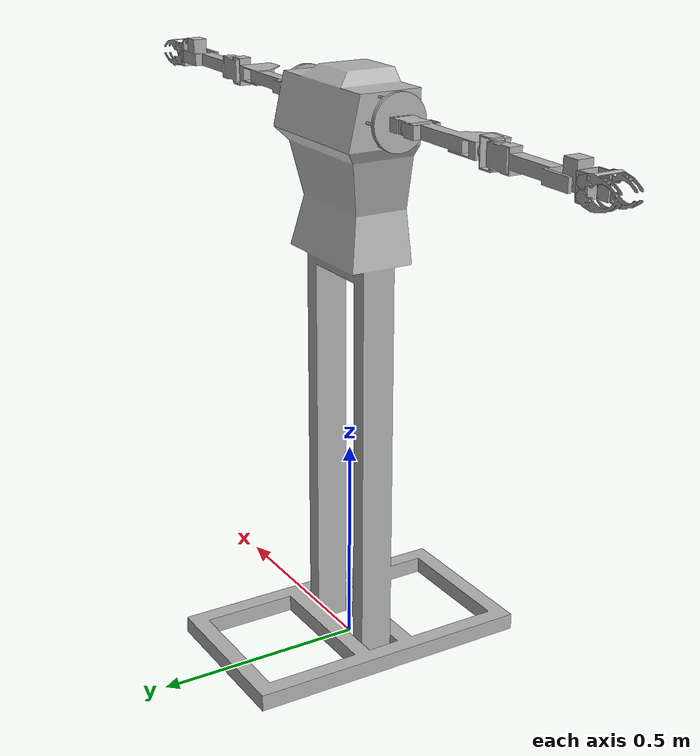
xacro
<?xml version="1.0" ?>
<robot name="Robot_v3" xmlns:xacro="http://www.ros.org/wiki/xacro">

<xacro:include filename="$(find Robot_v3_description)/urdf/materials.xacro" />
<xacro:include filename="$(find Robot_v3_description)/urdf/Robot_v3.trans" />
<xacro:include filename="$(find Robot_v3_description)/urdf/Robot_v3.gazebo" />
<link name="base_link">
  <inertial>
    <origin xyz="-5.454402963127223e-18 0.00017793668988113717 0.8689085940658481" rpy="0 0 0"/>
    <mass value="224.71501051023168"/>
    <inertia ixx="55.047659" iyy="55.39019" izz="4.206946" ixy="0.0" iyz="-0.066429" ixz="-0.0"/>
  </inertial>
  <visual>
    <origin xyz="0 0 0" rpy="0 0 0"/>
    <geometry>
      <mesh filename="package://Robot_v3_description/meshes/base_link.stl" scale="0.001 0.001 0.001"/>
    </geometry>
    <material name="silver"/>
  </visual>
  <collision>
    <origin xyz="0 0 0" rpy="0 0 0"/>
    <geometry>
      <mesh filename="package://Robot_v3_description/meshes/base_link.stl" scale="0.001 0.001 0.001"/>
    </geometry>
  </collision>
</link>

<link name="right_shoulder_1">
  <inertial>
    <origin xyz="0.027330882089484643 -2.42861286636753e-17 2.220446049250313e-16" rpy="0 0 0"/>
    <mass value="1.4666981122291545"/>
    <inertia ixx="0.001578" iyy="0.001727" izz="0.00186" ixy="-0.0" iyz="-0.0" ixz="0.0"/>
  </inertial>
  <visual>
    <origin xyz="-0.1965 0.0015 -1.317" rpy="0 0 0"/>
    <geometry>
      <mesh filename="package://Robot_v3_description/meshes/right_shoulder_1.stl" scale="0.001 0.001 0.001"/>
    </geometry>
    <material name="silver"/>
  </visual>
  <collision>
    <origin xyz="-0.1965 0.0015 -1.317" rpy="0 0 0"/>
    <geometry>
      <mesh filename="package://Robot_v3_description/meshes/right_shoulder_1.stl" scale="0.001 0.001 0.001"/>
    </geometry>
  </collision>
</link>

<link name="right_upper_arm_1">
  <inertial>
    <origin xyz="0.1430705592158693 -0.035260426712845856 2.220446049250313e-16" rpy="0 0 0"/>
    <mass value="1.9288762922196283"/>
    <inertia ixx="0.001022" iyy="0.008968" izz="0.009575" ixy="0.001101" iyz="-0.0" ixz="0.0"/>
  </inertial>
  <visual>
    <origin xyz="-0.2645 -0.0255 -1.317" rpy="0 0 0"/>
    <geometry>
      <mesh filename="package://Robot_v3_description/meshes/right_upper_arm_1.stl" scale="0.001 0.001 0.001"/>
    </geometry>
    <material name="silver"/>
  </visual>
  <collision>
    <origin xyz="-0.2645 -0.0255 -1.317" rpy="0 0 0"/>
    <geometry>
      <mesh filename="package://Robot_v3_description/meshes/right_upper_arm_1.stl" scale="0.001 0.001 0.001"/>
    </geometry>
  </collision>
</link>

<link name="right_elbow_1">
  <inertial>
    <origin xyz="0.017967251502734316 9.072039994229009e-14 1.3322676295501878e-15" rpy="0 0 0"/>
    <mass value="0.14390404221962602"/>
    <inertia ixx="0.000104" iyy="0.000129" izz="4.5e-05" ixy="0.0" iyz="0.0" ixz="-0.0"/>
  </inertial>
  <visual>
    <origin xyz="-0.4995 0.0015 -1.317" rpy="0 0 0"/>
    <geometry>
      <mesh filename="package://Robot_v3_description/meshes/right_elbow_1.stl" scale="0.001 0.001 0.001"/>
    </geometry>
    <material name="silver"/>
  </visual>
  <collision>
    <origin xyz="-0.4995 0.0015 -1.317" rpy="0 0 0"/>
    <geometry>
      <mesh filename="package://Robot_v3_description/meshes/right_elbow_1.stl" scale="0.001 0.001 0.001"/>
    </geometry>
  </collision>
</link>

<link name="right_forearm_1">
  <inertial>
    <origin xyz="0.09444754727005034 -9.540979117872439e-18 -0.027499999999999192" rpy="0 0 0"/>
    <mass value="2.028991579777898"/>
    <inertia ixx="0.000674" iyy="0.011803" izz="0.011894" ixy="-0.0" iyz="-0.0" ixz="0.0"/>
  </inertial>
  <visual>
    <origin xyz="-0.5385 0.0015 -1.3445" rpy="0 0 0"/>
    <geometry>
      <mesh filename="package://Robot_v3_description/meshes/right_forearm_1.stl" scale="0.001 0.001 0.001"/>
    </geometry>
    <material name="silver"/>
  </visual>
  <collision>
    <origin xyz="-0.5385 0.0015 -1.3445" rpy="0 0 0"/>
    <geometry>
      <mesh filename="package://Robot_v3_description/meshes/right_forearm_1.stl" scale="0.001 0.001 0.001"/>
    </geometry>
  </collision>
</link>

<link name="right_wrist_1">
  <inertial>
    <origin xyz="0.00022630011372237746 0.021500000000005515 0.014473720665366008" rpy="0 0 0"/>
    <mass value="0.7029015023306757"/>
    <inertia ixx="0.00029" iyy="0.000304" izz="0.000174" ixy="-0.0" iyz="0.0" ixz="2e-06"/>
  </inertial>
  <visual>
    <origin xyz="-0.7785 0.023 -1.317" rpy="0 0 0"/>
    <geometry>
      <mesh filename="package://Robot_v3_description/meshes/right_wrist_1.stl" scale="0.001 0.001 0.001"/>
    </geometry>
    <material name="silver"/>
  </visual>
  <collision>
    <origin xyz="-0.7785 0.023 -1.317" rpy="0 0 0"/>
    <geometry>
      <mesh filename="package://Robot_v3_description/meshes/right_wrist_1.stl" scale="0.001 0.001 0.001"/>
    </geometry>
  </collision>
</link>

<link name="right_hand_1">
  <inertial>
    <origin xyz="0.015812535108692627 4.2400544880694113e-14 4.440892098500626e-16" rpy="0 0 0"/>
    <mass value="0.18246095209761248"/>
    <inertia ixx="0.000135" iyy="7e-05" izz="0.000108" ixy="0.0" iyz="0.0" ixz="0.0"/>
  </inertial>
  <visual>
    <origin xyz="-0.8015 0.0015 -1.317" rpy="0 0 0"/>
    <geometry>
      <mesh filename="package://Robot_v3_description/meshes/right_hand_1.stl" scale="0.001 0.001 0.001"/>
    </geometry>
    <material name="silver"/>
  </visual>
  <collision>
    <origin xyz="-0.8015 0.0015 -1.317" rpy="0 0 0"/>
    <geometry>
      <mesh filename="package://Robot_v3_description/meshes/right_hand_1.stl" scale="0.001 0.001 0.001"/>
    </geometry>
  </collision>
</link>

<link name="right_clamp_1">
  <inertial>
    <origin xyz="0.029699086444145095 -0.02624490134481386 0.006164242188830604" rpy="0 0 0"/>
    <mass value="0.0832628699699654"/>
    <inertia ixx="6.4e-05" iyy="6.6e-05" izz="0.000119" ixy="3e-06" iyz="1e-06" ixz="-5e-06"/>
  </inertial>
  <visual>
    <origin xyz="-0.8265 -0.026 -1.331" rpy="0 0 0"/>
    <geometry>
      <mesh filename="package://Robot_v3_description/meshes/right_clamp_1.stl" scale="0.001 0.001 0.001"/>
    </geometry>
    <material name="silver"/>
  </visual>
  <collision>
    <origin xyz="-0.8265 -0.026 -1.331" rpy="0 0 0"/>
    <geometry>
      <mesh filename="package://Robot_v3_description/meshes/right_clamp_1.stl" scale="0.001 0.001 0.001"/>
    </geometry>
  </collision>
</link>

<link name="right_clamp_2_1">
  <inertial>
    <origin xyz="0.029406622089125367 -0.02621524633662658 -0.006310473415974904" rpy="0 0 0"/>
    <mass value="0.081340975399017"/>
    <inertia ixx="6.2e-05" iyy="6.4e-05" izz="0.000116" ixy="3e-06" iyz="-1e-06" ixz="5e-06"/>
  </inertial>
  <visual>
    <origin xyz="-0.8265 -0.026 -1.303" rpy="0 0 0"/>
    <geometry>
      <mesh filename="package://Robot_v3_description/meshes/right_clamp_2_1.stl" scale="0.001 0.001 0.001"/>
    </geometry>
    <material name="silver"/>
  </visual>
  <collision>
    <origin xyz="-0.8265 -0.026 -1.303" rpy="0 0 0"/>
    <geometry>
      <mesh filename="package://Robot_v3_description/meshes/right_clamp_2_1.stl" scale="0.001 0.001 0.001"/>
    </geometry>
  </collision>
</link>

<link name="left_shoulder_1">
  <inertial>
    <origin xyz="-0.027330882089484643 -2.42861286636753e-17 2.220446049250313e-16" rpy="0 0 0"/>
    <mass value="1.4666981122291545"/>
    <inertia ixx="0.001578" iyy="0.001727" izz="0.00186" ixy="0.0" iyz="-0.0" ixz="-0.0"/>
  </inertial>
  <visual>
    <origin xyz="0.1965 0.0015 -1.317" rpy="0 0 0"/>
    <geometry>
      <mesh filename="package://Robot_v3_description/meshes/left_shoulder_1.stl" scale="0.001 0.001 0.001"/>
    </geometry>
    <material name="silver"/>
  </visual>
  <collision>
    <origin xyz="0.1965 0.0015 -1.317" rpy="0 0 0"/>
    <geometry>
      <mesh filename="package://Robot_v3_description/meshes/left_shoulder_1.stl" scale="0.001 0.001 0.001"/>
    </geometry>
  </collision>
</link>

<link name="left_upper_arm_1">
  <inertial>
    <origin xyz="-0.1430705592158693 -0.035260426712845856 4.440892098500626e-16" rpy="0 0 0"/>
    <mass value="1.9288762922196283"/>
    <inertia ixx="0.001022" iyy="0.008968" izz="0.009575" ixy="-0.001101" iyz="0.0" ixz="0.0"/>
  </inertial>
  <visual>
    <origin xyz="0.2645 -0.0255 -1.317" rpy="0 0 0"/>
    <geometry>
      <mesh filename="package://Robot_v3_description/meshes/left_upper_arm_1.stl" scale="0.001 0.001 0.001"/>
    </geometry>
    <material name="silver"/>
  </visual>
  <collision>
    <origin xyz="0.2645 -0.0255 -1.317" rpy="0 0 0"/>
    <geometry>
      <mesh filename="package://Robot_v3_description/meshes/left_upper_arm_1.stl" scale="0.001 0.001 0.001"/>
    </geometry>
  </collision>
</link>

<link name="left_elbow_1">
  <inertial>
    <origin xyz="-0.017967251502734316 9.071888205924861e-14 1.3322676295501878e-15" rpy="0 0 0"/>
    <mass value="0.14390404221962605"/>
    <inertia ixx="0.000104" iyy="0.000129" izz="4.5e-05" ixy="-0.0" iyz="-0.0" ixz="0.0"/>
  </inertial>
  <visual>
    <origin xyz="0.4995 0.0015 -1.317" rpy="0 0 0"/>
    <geometry>
      <mesh filename="package://Robot_v3_description/meshes/left_elbow_1.stl" scale="0.001 0.001 0.001"/>
    </geometry>
    <material name="silver"/>
  </visual>
  <collision>
    <origin xyz="0.4995 0.0015 -1.317" rpy="0 0 0"/>
    <geometry>
      <mesh filename="package://Robot_v3_description/meshes/left_elbow_1.stl" scale="0.001 0.001 0.001"/>
    </geometry>
  </collision>
</link>

<link name="left_forearm_1">
  <inertial>
    <origin xyz="-0.09444754727005022 -1.0842021724855044e-18 -0.027499999999999636" rpy="0 0 0"/>
    <mass value="2.028991579777898"/>
    <inertia ixx="0.000674" iyy="0.011803" izz="0.011894" ixy="0.0" iyz="0.0" ixz="0.0"/>
  </inertial>
  <visual>
    <origin xyz="0.5385 0.0015 -1.3445" rpy="0 0 0"/>
    <geometry>
      <mesh filename="package://Robot_v3_description/meshes/left_forearm_1.stl" scale="0.001 0.001 0.001"/>
    </geometry>
    <material name="silver"/>
  </visual>
  <collision>
    <origin xyz="0.5385 0.0015 -1.3445" rpy="0 0 0"/>
    <geometry>
      <mesh filename="package://Robot_v3_description/meshes/left_forearm_1.stl" scale="0.001 0.001 0.001"/>
    </geometry>
  </collision>
</link>

<link name="left_wrist_1">
  <inertial>
    <origin xyz="-0.00022630011372237746 -0.021499999999994485 0.014473720665366452" rpy="0 0 0"/>
    <mass value="0.7029015023306757"/>
    <inertia ixx="0.00029" iyy="0.000304" izz="0.000174" ixy="0.0" iyz="0.0" ixz="-2e-06"/>
  </inertial>
  <visual>
    <origin xyz="0.7785 -0.02 -1.317" rpy="0 0 0"/>
    <geometry>
      <mesh filename="package://Robot_v3_description/meshes/left_wrist_1.stl" scale="0.001 0.001 0.001"/>
    </geometry>
    <material name="silver"/>
  </visual>
  <collision>
    <origin xyz="0.7785 -0.02 -1.317" rpy="0 0 0"/>
    <geometry>
      <mesh filename="package://Robot_v3_description/meshes/left_wrist_1.stl" scale="0.001 0.001 0.001"/>
    </geometry>
  </collision>
</link>

<link name="left_hand_1">
  <inertial>
    <origin xyz="-0.015812535108692627 4.2394473348528194e-14 4.440892098500626e-16" rpy="0 0 0"/>
    <mass value="0.18246095209761248"/>
    <inertia ixx="0.000135" iyy="7e-05" izz="0.000108" ixy="-0.0" iyz="0.0" ixz="0.0"/>
  </inertial>
  <visual>
    <origin xyz="0.8015 0.0015 -1.317" rpy="0 0 0"/>
    <geometry>
      <mesh filename="package://Robot_v3_description/meshes/left_hand_1.stl" scale="0.001 0.001 0.001"/>
    </geometry>
    <material name="silver"/>
  </visual>
  <collision>
    <origin xyz="0.8015 0.0015 -1.317" rpy="0 0 0"/>
    <geometry>
      <mesh filename="package://Robot_v3_description/meshes/left_hand_1.stl" scale="0.001 0.001 0.001"/>
    </geometry>
  </collision>
</link>

<link name="left_clamp_1">
  <inertial>
    <origin xyz="-0.029699086444145095 0.028755098655186308 0.006164242188830604" rpy="0 0 0"/>
    <mass value="0.0832628699699621"/>
    <inertia ixx="6.4e-05" iyy="6.6e-05" izz="0.000119" ixy="-3e-06" iyz="1e-06" ixz="5e-06"/>
  </inertial>
  <visual>
    <origin xyz="0.8265 0.029 -1.331" rpy="0 0 0"/>
    <geometry>
      <mesh filename="package://Robot_v3_description/meshes/left_clamp_1.stl" scale="0.001 0.001 0.001"/>
    </geometry>
    <material name="silver"/>
  </visual>
  <collision>
    <origin xyz="0.8265 0.029 -1.331" rpy="0 0 0"/>
    <geometry>
      <mesh filename="package://Robot_v3_description/meshes/left_clamp_1.stl" scale="0.001 0.001 0.001"/>
    </geometry>
  </collision>
</link>

<link name="left_clamp_2_1">
  <inertial>
    <origin xyz="-0.029406622089125478 0.02878475366337348 -0.006310473415974904" rpy="0 0 0"/>
    <mass value="0.08134097539901687"/>
    <inertia ixx="6.2e-05" iyy="6.4e-05" izz="0.000116" ixy="-3e-06" iyz="-1e-06" ixz="-5e-06"/>
  </inertial>
  <visual>
    <origin xyz="0.8265 0.029 -1.303" rpy="0 0 0"/>
    <geometry>
      <mesh filename="package://Robot_v3_description/meshes/left_clamp_2_1.stl" scale="0.001 0.001 0.001"/>
    </geometry>
    <material name="silver"/>
  </visual>
  <collision>
    <origin xyz="0.8265 0.029 -1.303" rpy="0 0 0"/>
    <geometry>
      <mesh filename="package://Robot_v3_description/meshes/left_clamp_2_1.stl" scale="0.001 0.001 0.001"/>
    </geometry>
  </collision>
</link>

<joint name="RJ1" type="continuous">
  <origin xyz="0.1965 -0.0015 1.317" rpy="0 0 0"/>
  <parent link="base_link"/>
  <child link="right_shoulder_1"/>
  <axis xyz="1.0 0.0 0.0"/>
</joint>

<joint name="RJ2" type="continuous">
  <origin xyz="0.068 0.027 0.0" rpy="0 0 0"/>
  <parent link="right_shoulder_1"/>
  <child link="right_upper_arm_1"/>
  <axis xyz="0.0 1.0 0.0"/>
</joint>

<joint name="RJ3" type="continuous">
  <origin xyz="0.235 -0.027 0.0" rpy="0 0 0"/>
  <parent link="right_upper_arm_1"/>
  <child link="right_elbow_1"/>
  <axis xyz="1.0 0.0 0.0"/>
</joint>

<joint name="RJ4" type="continuous">
  <origin xyz="0.039 0.0 0.0275" rpy="0 0 0"/>
  <parent link="right_elbow_1"/>
  <child link="right_forearm_1"/>
  <axis xyz="0.0 0.0 -1.0"/>
</joint>

<joint name="RJ5" type="continuous">
  <origin xyz="0.24 -0.0215 -0.0275" rpy="0 0 0"/>
  <parent link="right_forearm_1"/>
  <child link="right_wrist_1"/>
  <axis xyz="0.0 1.0 0.0"/>
</joint>

<joint name="RJ6" type="continuous">
  <origin xyz="0.023 0.0215 0.0" rpy="0 0 0"/>
  <parent link="right_wrist_1"/>
  <child link="right_hand_1"/>
  <axis xyz="1.0 0.0 0.0"/>
</joint>

<joint name="RJ7" type="continuous">
  <origin xyz="0.025 0.0275 0.014" rpy="0 0 0"/>
  <parent link="right_hand_1"/>
  <child link="right_clamp_1"/>
  <axis xyz="0.0 1.0 0.0"/>
</joint>

<joint name="RJ8" type="continuous">
  <origin xyz="0.025 0.0275 -0.014" rpy="0 0 0"/>
  <parent link="right_hand_1"/>
  <child link="right_clamp_2_1"/>
  <axis xyz="0.0 1.0 0.0"/>
</joint>

<joint name="LJ1" type="continuous">
  <origin xyz="-0.1965 -0.0015 1.317" rpy="0 0 0"/>
  <parent link="base_link"/>
  <child link="left_shoulder_1"/>
  <axis xyz="-1.0 0.0 0.0"/>
</joint>

<joint name="LJ2" type="continuous">
  <origin xyz="-0.068 0.027 0.0" rpy="0 0 0"/>
  <parent link="left_shoulder_1"/>
  <child link="left_upper_arm_1"/>
  <axis xyz="0.0 1.0 0.0"/>
</joint>

<joint name="LJ3" type="continuous">
  <origin xyz="-0.235 -0.027 0.0" rpy="0 0 0"/>
  <parent link="left_upper_arm_1"/>
  <child link="left_elbow_1"/>
  <axis xyz="-1.0 0.0 0.0"/>
</joint>

<joint name="LJ4" type="continuous">
  <origin xyz="-0.039 0.0 0.0275" rpy="0 0 0"/>
  <parent link="left_elbow_1"/>
  <child link="left_forearm_1"/>
  <axis xyz="0.0 0.0 -1.0"/>
</joint>

<joint name="LJ5" type="continuous">
  <origin xyz="-0.24 0.0215 -0.0275" rpy="0 0 0"/>
  <parent link="left_forearm_1"/>
  <child link="left_wrist_1"/>
  <axis xyz="0.0 -1.0 0.0"/>
</joint>

<joint name="LJ6" type="continuous">
  <origin xyz="-0.023 -0.0215 0.0" rpy="0 0 0"/>
  <parent link="left_wrist_1"/>
  <child link="left_hand_1"/>
  <axis xyz="-1.0 0.0 0.0"/>
</joint>

<joint name="LJ7" type="continuous">
  <origin xyz="-0.025 -0.0275 0.014" rpy="0 0 0"/>
  <parent link="left_hand_1"/>
  <child link="left_clamp_1"/>
  <axis xyz="0.0 -1.0 0.0"/>
</joint>

<joint name="LJ8" type="continuous">
  <origin xyz="-0.025 -0.0275 -0.014" rpy="0 0 0"/>
  <parent link="left_hand_1"/>
  <child link="left_clamp_2_1"/>
  <axis xyz="0.0 -1.0 0.0"/>
</joint>

</robot>

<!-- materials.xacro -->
<robot name="Robot_v3" xmlns:xacro="http://www.ros.org/wiki/xacro" >

<material name="silver">
  <color rgba="0.700 0.700 0.700 1.000"/>
</material>

</robot>

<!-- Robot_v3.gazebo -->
<robot name="Robot_v3" xmlns:xacro="http://www.ros.org/wiki/xacro" >

<xacro:property name="body_color" value="Gazebo/Silver" />

<gazebo>
  <plugin name="control" filename="libgazebo_ros_control.so"/>
</gazebo>
<gazebo reference="base_link">
  <material>${body_color}</material>
  <mu1>0.2</mu1>
  <mu2>0.2</mu2>
  <selfCollide>true</selfCollide>
  <gravity>true</gravity>
</gazebo>

<gazebo reference="right_shoulder_1">
  <material>${body_color}</material>
  <mu1>0.2</mu1>
  <mu2>0.2</mu2>
  <selfCollide>true</selfCollide>
</gazebo>

<gazebo reference="right_upper_arm_1">
  <material>${body_color}</material>
  <mu1>0.2</mu1>
  <mu2>0.2</mu2>
  <selfCollide>true</selfCollide>
</gazebo>

<gazebo reference="right_elbow_1">
  <material>${body_color}</material>
  <mu1>0.2</mu1>
  <mu2>0.2</mu2>
  <selfCollide>true</selfCollide>
</gazebo>

<gazebo reference="right_forearm_1">
  <material>${body_color}</material>
  <mu1>0.2</mu1>
  <mu2>0.2</mu2>
  <selfCollide>true</selfCollide>
</gazebo>

<gazebo reference="right_wrist_1">
  <material>${body_color}</material>
  <mu1>0.2</mu1>
  <mu2>0.2</mu2>
  <selfCollide>true</selfCollide>
</gazebo>

<gazebo reference="right_hand_1">
  <material>${body_color}</material>
  <mu1>0.2</mu1>
  <mu2>0.2</mu2>
  <selfCollide>true</selfCollide>
</gazebo>

<gazebo reference="right_clamp_1">
  <material>${body_color}</material>
  <mu1>0.2</mu1>
  <mu2>0.2</mu2>
  <selfCollide>true</selfCollide>
</gazebo>

<gazebo reference="right_clamp_2_1">
  <material>${body_color}</material>
  <mu1>0.2</mu1>
  <mu2>0.2</mu2>
  <selfCollide>true</selfCollide>
</gazebo>

<gazebo reference="left_shoulder_1">
  <material>${body_color}</material>
  <mu1>0.2</mu1>
  <mu2>0.2</mu2>
  <selfCollide>true</selfCollide>
</gazebo>

<gazebo reference="left_upper_arm_1">
  <material>${body_color}</material>
  <mu1>0.2</mu1>
  <mu2>0.2</mu2>
  <selfCollide>true</selfCollide>
</gazebo>

<gazebo reference="left_elbow_1">
  <material>${body_color}</material>
  <mu1>0.2</mu1>
  <mu2>0.2</mu2>
  <selfCollide>true</selfCollide>
</gazebo>

<gazebo reference="left_forearm_1">
  <material>${body_color}</material>
  <mu1>0.2</mu1>
  <mu2>0.2</mu2>
  <selfCollide>true</selfCollide>
</gazebo>

<gazebo reference="left_wrist_1">
  <material>${body_color}</material>
  <mu1>0.2</mu1>
  <mu2>0.2</mu2>
  <selfCollide>true</selfCollide>
</gazebo>

<gazebo reference="left_hand_1">
  <material>${body_color}</material>
  <mu1>0.2</mu1>
  <mu2>0.2</mu2>
  <selfCollide>true</selfCollide>
</gazebo>

<gazebo reference="left_clamp_1">
  <material>${body_color}</material>
  <mu1>0.2</mu1>
  <mu2>0.2</mu2>
  <selfCollide>true</selfCollide>
</gazebo>

<gazebo reference="left_clamp_2_1">
  <material>${body_color}</material>
  <mu1>0.2</mu1>
  <mu2>0.2</mu2>
  <selfCollide>true</selfCollide>
</gazebo>

</robot>
